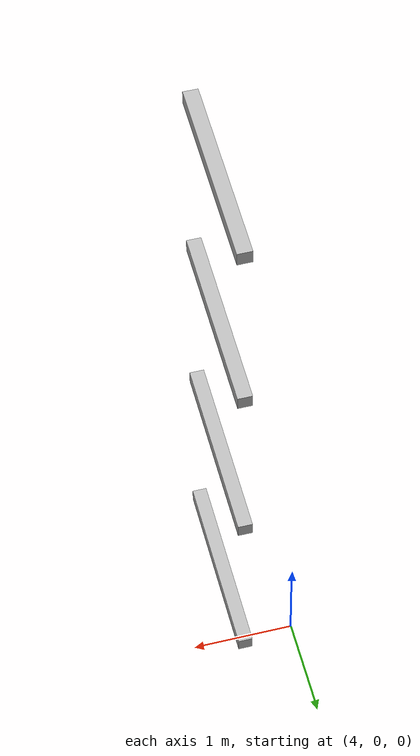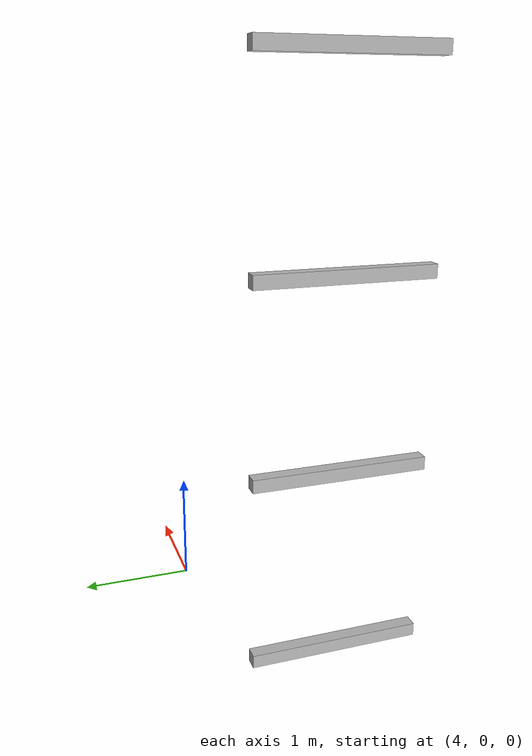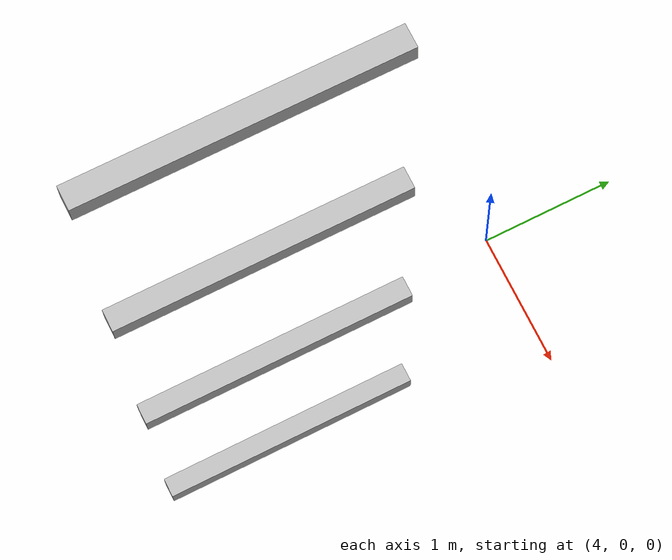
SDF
<sdf version="1.7">
 <world name="default">
  <model name="orthogonal_747_2.000.15_TS">
   <static>1</static>
   <link name="y_link_0_1_5">
    <inertial>
     <mass>1</mass>
     <inertia>
      <ixx>0.166667</ixx>
      <ixy>0</ixy>
      <ixz>0</ixz>
      <iyy>0.166667</iyy>
      <iyz>0</iyz>
      <izz>0.166667</izz>
     </inertia>
    </inertial>
    <pose>10.75 3.225 1.075 0 -0 0</pose>
    <visual name="visual_0">
     <laser_retro>274</laser_retro>
     <geometry><box><size>0.15 1e-06 0.15</size></box></geometry>
     <material>
      <script><name>Gazebo/Grey</name><uri>file://media/materials/scripts/gazebo.material</uri></script>
      <shader type="pixel"><normal_map>__default__</normal_map></shader>
      <ambient>0.678 0.498 0.659 1</ambient>
      <diffuse>0.7 0.7 0.7 1</diffuse>
      <specular>0.01 0.01 0.01 1</specular>
      <emissive>0 0 0 1</emissive>
     </material>
     <pose>0 -1 0 0 -0 0</pose>
     <transparency>1</transparency>
    </visual>
    <visual name="visual_1">
     <laser_retro>275</laser_retro>
     <geometry><box><size>0.15 1e-06 0.15</size></box></geometry>
     <material>
      <script><name>Gazebo/Grey</name><uri>file://media/materials/scripts/gazebo.material</uri></script>
      <shader type="pixel"><normal_map>__default__</normal_map></shader>
      <ambient>0.447 0.624 0.812 1</ambient>
      <diffuse>0.7 0.7 0.7 1</diffuse>
      <specular>0.01 0.01 0.01 1</specular>
      <emissive>0 0 0 1</emissive>
     </material>
     <pose>0 1 0 0 -0 0</pose>
     <transparency>1</transparency>
    </visual>
    <visual name="visual_2">
     <laser_retro>276</laser_retro>
     <geometry><box><size>0.15 2 1e-06</size></box></geometry>
     <material>
      <script><name>Gazebo/Grey</name><uri>file://media/materials/scripts/gazebo.material</uri></script>
      <shader type="pixel"><normal_map>__default__</normal_map></shader>
      <ambient>0.988 0.686 0.243 1</ambient>
      <diffuse>0.7 0.7 0.7 1</diffuse>
      <specular>0.01 0.01 0.01 1</specular>
      <emissive>0 0 0 1</emissive>
     </material>
     <pose>0 0 -0.075 0 -0 0</pose>
     <transparency>1</transparency>
    </visual>
    <visual name="visual_3">
     <laser_retro>277</laser_retro>
     <geometry><box><size>1e-06 2 0.15</size></box></geometry>
     <material>
      <script><name>Gazebo/Grey</name><uri>file://media/materials/scripts/gazebo.material</uri></script>
      <shader type="pixel"><normal_map>__default__</normal_map></shader>
      <ambient>0.988 0.914 0.31 1</ambient>
      <diffuse>0.7 0.7 0.7 1</diffuse>
      <specular>0.01 0.01 0.01 1</specular>
      <emissive>0 0 0 1</emissive>
     </material>
     <pose>0.075 0 0 0 -0 0</pose>
     <transparency>1</transparency>
    </visual>
    <visual name="visual_4">
     <laser_retro>278</laser_retro>
     <geometry><box><size>0.15 2 1e-06</size></box></geometry>
     <material>
      <script><name>Gazebo/Grey</name><uri>file://media/materials/scripts/gazebo.material</uri></script>
      <shader type="pixel"><normal_map>__default__</normal_map></shader>
      <ambient>0.937 0.161 0.161 1</ambient>
      <diffuse>0.7 0.7 0.7 1</diffuse>
      <specular>0.01 0.01 0.01 1</specular>
      <emissive>0 0 0 1</emissive>
     </material>
     <pose>0 0 0.075 0 -0 0</pose>
     <transparency>1</transparency>
    </visual>
    <visual name="visual_5">
     <laser_retro>279</laser_retro>
     <geometry><box><size>1e-06 2 0.15</size></box></geometry>
     <material>
      <script><name>Gazebo/Grey</name><uri>file://media/materials/scripts/gazebo.material</uri></script>
      <shader type="pixel"><normal_map>__default__</normal_map></shader>
      <ambient>0.541 0.886 0.204 1</ambient>
      <diffuse>0.7 0.7 0.7 1</diffuse>
      <specular>0.01 0.01 0.01 1</specular>
      <emissive>0 0 0 1</emissive>
     </material>
     <pose>-0.075 0 0 0 -0 0</pose>
     <transparency>1</transparency>
    </visual>
    <visual name="visual_texture">
     <geometry><box><size>0.149985 1.9998 0.149985</size></box></geometry>
     <material>
      <script>
       <uri>model://BASE_MODELS/simple_block_v2_textured/materials/scripts</uri>
       <uri>model://BASE_MODELS/simple_block_v2_textured/materials/textures</uri>
       <name>metal</name>
      </script>
     </material>
     <laser_retro>280</laser_retro>
    </visual>
    <collision name="collision">
     <geometry><box><size>0.15 2 0.15</size></box></geometry>
     <surface>
      <friction>
       <ode><mu>1</mu><mu2>1</mu2><fdir1>0 0 0</fdir1><slip1>0</slip1><slip2>0</slip2></ode>
       <torsional>
        <coefficient>1</coefficient>
        <patch_radius>0</patch_radius>
        <surface_radius>0</surface_radius>
        <use_patch_radius>1</use_patch_radius>
        <ode><slip>0</slip></ode>
       </torsional>
      </friction>
      <bounce><restitution_coefficient>0</restitution_coefficient><threshold>1e+06</threshold></bounce>
      <contact>
       <collide_without_contact>0</collide_without_contact>
       <collide_without_contact_bitmask>1</collide_without_contact_bitmask>
       <collide_bitmask>1</collide_bitmask>
       <ode>
        <soft_cfm>0</soft_cfm>
        <soft_erp>0.2</soft_erp>
        <kp>1e+13</kp>
        <kd>1</kd>
        <max_vel>0.01</max_vel>
        <min_depth>0</min_depth>
       </ode>
       <bullet>
        <split_impulse>1</split_impulse>
        <split_impulse_penetration_threshold>-0.01</split_impulse_penetration_threshold>
        <soft_cfm>0</soft_cfm>
        <soft_erp>0.2</soft_erp>
        <kp>1e+13</kp>
        <kd>1</kd>
       </bullet>
      </contact>
     </surface>
    </collision>
   </link>
   <link name="y_link_1_1_5">
    <inertial>
     <mass>1</mass>
     <inertia>
      <ixx>0.166667</ixx>
      <ixy>0</ixy>
      <ixz>0</ixz>
      <iyy>0.166667</iyy>
      <iyz>0</iyz>
      <izz>0.166667</izz>
     </inertia>
    </inertial>
    <pose>10.75 3.225 3.225 0 -0 0</pose>
    <visual name="visual_0">
     <laser_retro>1086</laser_retro>
     <geometry><box><size>0.15 1e-06 0.15</size></box></geometry>
     <material>
      <script><name>Gazebo/Grey</name><uri>file://media/materials/scripts/gazebo.material</uri></script>
      <shader type="pixel"><normal_map>__default__</normal_map></shader>
      <ambient>0.678 0.498 0.659 1</ambient>
      <diffuse>0.7 0.7 0.7 1</diffuse>
      <specular>0.01 0.01 0.01 1</specular>
      <emissive>0 0 0 1</emissive>
     </material>
     <pose>0 -1 0 0 -0 0</pose>
     <transparency>1</transparency>
    </visual>
    <visual name="visual_1">
     <laser_retro>1087</laser_retro>
     <geometry><box><size>0.15 1e-06 0.15</size></box></geometry>
     <material>
      <script><name>Gazebo/Grey</name><uri>file://media/materials/scripts/gazebo.material</uri></script>
      <shader type="pixel"><normal_map>__default__</normal_map></shader>
      <ambient>0.447 0.624 0.812 1</ambient>
      <diffuse>0.7 0.7 0.7 1</diffuse>
      <specular>0.01 0.01 0.01 1</specular>
      <emissive>0 0 0 1</emissive>
     </material>
     <pose>0 1 0 0 -0 0</pose>
     <transparency>1</transparency>
    </visual>
    <visual name="visual_2">
     <laser_retro>1088</laser_retro>
     <geometry><box><size>0.15 2 1e-06</size></box></geometry>
     <material>
      <script><name>Gazebo/Grey</name><uri>file://media/materials/scripts/gazebo.material</uri></script>
      <shader type="pixel"><normal_map>__default__</normal_map></shader>
      <ambient>0.988 0.686 0.243 1</ambient>
      <diffuse>0.7 0.7 0.7 1</diffuse>
      <specular>0.01 0.01 0.01 1</specular>
      <emissive>0 0 0 1</emissive>
     </material>
     <pose>0 0 -0.075 0 -0 0</pose>
     <transparency>1</transparency>
    </visual>
    <visual name="visual_3">
     <laser_retro>1089</laser_retro>
     <geometry><box><size>1e-06 2 0.15</size></box></geometry>
     <material>
      <script><name>Gazebo/Grey</name><uri>file://media/materials/scripts/gazebo.material</uri></script>
      <shader type="pixel"><normal_map>__default__</normal_map></shader>
      <ambient>0.988 0.914 0.31 1</ambient>
      <diffuse>0.7 0.7 0.7 1</diffuse>
      <specular>0.01 0.01 0.01 1</specular>
      <emissive>0 0 0 1</emissive>
     </material>
     <pose>0.075 0 0 0 -0 0</pose>
     <transparency>1</transparency>
    </visual>
    <visual name="visual_4">
     <laser_retro>1090</laser_retro>
     <geometry><box><size>0.15 2 1e-06</size></box></geometry>
     <material>
      <script><name>Gazebo/Grey</name><uri>file://media/materials/scripts/gazebo.material</uri></script>
      <shader type="pixel"><normal_map>__default__</normal_map></shader>
      <ambient>0.937 0.161 0.161 1</ambient>
      <diffuse>0.7 0.7 0.7 1</diffuse>
      <specular>0.01 0.01 0.01 1</specular>
      <emissive>0 0 0 1</emissive>
     </material>
     <pose>0 0 0.075 0 -0 0</pose>
     <transparency>1</transparency>
    </visual>
    <visual name="visual_5">
     <laser_retro>1091</laser_retro>
     <geometry><box><size>1e-06 2 0.15</size></box></geometry>
     <material>
      <script><name>Gazebo/Grey</name><uri>file://media/materials/scripts/gazebo.material</uri></script>
      <shader type="pixel"><normal_map>__default__</normal_map></shader>
      <ambient>0.541 0.886 0.204 1</ambient>
      <diffuse>0.7 0.7 0.7 1</diffuse>
      <specular>0.01 0.01 0.01 1</specular>
      <emissive>0 0 0 1</emissive>
     </material>
     <pose>-0.075 0 0 0 -0 0</pose>
     <transparency>1</transparency>
    </visual>
    <visual name="visual_texture">
     <geometry><box><size>0.149985 1.9998 0.149985</size></box></geometry>
     <material>
      <script>
       <uri>model://BASE_MODELS/simple_block_v2_textured/materials/scripts</uri>
       <uri>model://BASE_MODELS/simple_block_v2_textured/materials/textures</uri>
       <name>metal</name>
      </script>
     </material>
     <laser_retro>1092</laser_retro>
    </visual>
    <collision name="collision">
     <geometry><box><size>0.15 2 0.15</size></box></geometry>
     <surface>
      <friction>
       <ode><mu>1</mu><mu2>1</mu2><fdir1>0 0 0</fdir1><slip1>0</slip1><slip2>0</slip2></ode>
       <torsional>
        <coefficient>1</coefficient>
        <patch_radius>0</patch_radius>
        <surface_radius>0</surface_radius>
        <use_patch_radius>1</use_patch_radius>
        <ode><slip>0</slip></ode>
       </torsional>
      </friction>
      <bounce><restitution_coefficient>0</restitution_coefficient><threshold>1e+06</threshold></bounce>
      <contact>
       <collide_without_contact>0</collide_without_contact>
       <collide_without_contact_bitmask>1</collide_without_contact_bitmask>
       <collide_bitmask>1</collide_bitmask>
       <ode>
        <soft_cfm>0</soft_cfm>
        <soft_erp>0.2</soft_erp>
        <kp>1e+13</kp>
        <kd>1</kd>
        <max_vel>0.01</max_vel>
        <min_depth>0</min_depth>
       </ode>
       <bullet>
        <split_impulse>1</split_impulse>
        <split_impulse_penetration_threshold>-0.01</split_impulse_penetration_threshold>
        <soft_cfm>0</soft_cfm>
        <soft_erp>0.2</soft_erp>
        <kp>1e+13</kp>
        <kd>1</kd>
       </bullet>
      </contact>
     </surface>
    </collision>
   </link>
   <link name="y_link_2_1_5">
    <inertial>
     <mass>1</mass>
     <inertia>
      <ixx>0.166667</ixx>
      <ixy>0</ixy>
      <ixz>0</ixz>
      <iyy>0.166667</iyy>
      <iyz>0</iyz>
      <izz>0.166667</izz>
     </inertia>
    </inertial>
    <pose>10.75 3.225 5.375 0 -0 0</pose>
    <visual name="visual_0">
     <laser_retro>1989</laser_retro>
     <geometry><box><size>0.15 1e-06 0.15</size></box></geometry>
     <material>
      <script><name>Gazebo/Grey</name><uri>file://media/materials/scripts/gazebo.material</uri></script>
      <shader type="pixel"><normal_map>__default__</normal_map></shader>
      <ambient>0.678 0.498 0.659 1</ambient>
      <diffuse>0.7 0.7 0.7 1</diffuse>
      <specular>0.01 0.01 0.01 1</specular>
      <emissive>0 0 0 1</emissive>
     </material>
     <pose>0 -1 0 0 -0 0</pose>
     <transparency>1</transparency>
    </visual>
    <visual name="visual_1">
     <laser_retro>1990</laser_retro>
     <geometry><box><size>0.15 1e-06 0.15</size></box></geometry>
     <material>
      <script><name>Gazebo/Grey</name><uri>file://media/materials/scripts/gazebo.material</uri></script>
      <shader type="pixel"><normal_map>__default__</normal_map></shader>
      <ambient>0.447 0.624 0.812 1</ambient>
      <diffuse>0.7 0.7 0.7 1</diffuse>
      <specular>0.01 0.01 0.01 1</specular>
      <emissive>0 0 0 1</emissive>
     </material>
     <pose>0 1 0 0 -0 0</pose>
     <transparency>1</transparency>
    </visual>
    <visual name="visual_2">
     <laser_retro>1991</laser_retro>
     <geometry><box><size>0.15 2 1e-06</size></box></geometry>
     <material>
      <script><name>Gazebo/Grey</name><uri>file://media/materials/scripts/gazebo.material</uri></script>
      <shader type="pixel"><normal_map>__default__</normal_map></shader>
      <ambient>0.988 0.686 0.243 1</ambient>
      <diffuse>0.7 0.7 0.7 1</diffuse>
      <specular>0.01 0.01 0.01 1</specular>
      <emissive>0 0 0 1</emissive>
     </material>
     <pose>0 0 -0.075 0 -0 0</pose>
     <transparency>1</transparency>
    </visual>
    <visual name="visual_3">
     <laser_retro>1992</laser_retro>
     <geometry><box><size>1e-06 2 0.15</size></box></geometry>
     <material>
      <script><name>Gazebo/Grey</name><uri>file://media/materials/scripts/gazebo.material</uri></script>
      <shader type="pixel"><normal_map>__default__</normal_map></shader>
      <ambient>0.988 0.914 0.31 1</ambient>
      <diffuse>0.7 0.7 0.7 1</diffuse>
      <specular>0.01 0.01 0.01 1</specular>
      <emissive>0 0 0 1</emissive>
     </material>
     <pose>0.075 0 0 0 -0 0</pose>
     <transparency>1</transparency>
    </visual>
    <visual name="visual_4">
     <laser_retro>1993</laser_retro>
     <geometry><box><size>0.15 2 1e-06</size></box></geometry>
     <material>
      <script><name>Gazebo/Grey</name><uri>file://media/materials/scripts/gazebo.material</uri></script>
      <shader type="pixel"><normal_map>__default__</normal_map></shader>
      <ambient>0.937 0.161 0.161 1</ambient>
      <diffuse>0.7 0.7 0.7 1</diffuse>
      <specular>0.01 0.01 0.01 1</specular>
      <emissive>0 0 0 1</emissive>
     </material>
     <pose>0 0 0.075 0 -0 0</pose>
     <transparency>1</transparency>
    </visual>
    <visual name="visual_5">
     <laser_retro>1994</laser_retro>
     <geometry><box><size>1e-06 2 0.15</size></box></geometry>
     <material>
      <script><name>Gazebo/Grey</name><uri>file://media/materials/scripts/gazebo.material</uri></script>
      <shader type="pixel"><normal_map>__default__</normal_map></shader>
      <ambient>0.541 0.886 0.204 1</ambient>
      <diffuse>0.7 0.7 0.7 1</diffuse>
      <specular>0.01 0.01 0.01 1</specular>
      <emissive>0 0 0 1</emissive>
     </material>
     <pose>-0.075 0 0 0 -0 0</pose>
     <transparency>1</transparency>
    </visual>
    <visual name="visual_texture">
     <geometry><box><size>0.149985 1.9998 0.149985</size></box></geometry>
     <material>
      <script>
       <uri>model://BASE_MODELS/simple_block_v2_textured/materials/scripts</uri>
       <uri>model://BASE_MODELS/simple_block_v2_textured/materials/textures</uri>
       <name>metal</name>
      </script>
     </material>
     <laser_retro>1995</laser_retro>
    </visual>
    <collision name="collision">
     <geometry><box><size>0.15 2 0.15</size></box></geometry>
     <surface>
      <friction>
       <ode><mu>1</mu><mu2>1</mu2><fdir1>0 0 0</fdir1><slip1>0</slip1><slip2>0</slip2></ode>
       <torsional>
        <coefficient>1</coefficient>
        <patch_radius>0</patch_radius>
        <surface_radius>0</surface_radius>
        <use_patch_radius>1</use_patch_radius>
        <ode><slip>0</slip></ode>
       </torsional>
      </friction>
      <bounce><restitution_coefficient>0</restitution_coefficient><threshold>1e+06</threshold></bounce>
      <contact>
       <collide_without_contact>0</collide_without_contact>
       <collide_without_contact_bitmask>1</collide_without_contact_bitmask>
       <collide_bitmask>1</collide_bitmask>
       <ode>
        <soft_cfm>0</soft_cfm>
        <soft_erp>0.2</soft_erp>
        <kp>1e+13</kp>
        <kd>1</kd>
        <max_vel>0.01</max_vel>
        <min_depth>0</min_depth>
       </ode>
       <bullet>
        <split_impulse>1</split_impulse>
        <split_impulse_penetration_threshold>-0.01</split_impulse_penetration_threshold>
        <soft_cfm>0</soft_cfm>
        <soft_erp>0.2</soft_erp>
        <kp>1e+13</kp>
        <kd>1</kd>
       </bullet>
      </contact>
     </surface>
    </collision>
   </link>
   <link name="y_link_3_1_5">
    <inertial>
     <mass>1</mass>
     <inertia>
      <ixx>0.166667</ixx>
      <ixy>0</ixy>
      <ixz>0</ixz>
      <iyy>0.166667</iyy>
      <iyz>0</iyz>
      <izz>0.166667</izz>
     </inertia>
    </inertial>
    <pose>10.75 3.225 7.525 0 -0 0</pose>
    <visual name="visual_0">
     <laser_retro>2892</laser_retro>
     <geometry><box><size>0.15 1e-06 0.15</size></box></geometry>
     <material>
      <script><name>Gazebo/Grey</name><uri>file://media/materials/scripts/gazebo.material</uri></script>
      <shader type="pixel"><normal_map>__default__</normal_map></shader>
      <ambient>0.678 0.498 0.659 1</ambient>
      <diffuse>0.7 0.7 0.7 1</diffuse>
      <specular>0.01 0.01 0.01 1</specular>
      <emissive>0 0 0 1</emissive>
     </material>
     <pose>0 -1 0 0 -0 0</pose>
     <transparency>1</transparency>
    </visual>
    <visual name="visual_1">
     <laser_retro>2893</laser_retro>
     <geometry><box><size>0.15 1e-06 0.15</size></box></geometry>
     <material>
      <script><name>Gazebo/Grey</name><uri>file://media/materials/scripts/gazebo.material</uri></script>
      <shader type="pixel"><normal_map>__default__</normal_map></shader>
      <ambient>0.447 0.624 0.812 1</ambient>
      <diffuse>0.7 0.7 0.7 1</diffuse>
      <specular>0.01 0.01 0.01 1</specular>
      <emissive>0 0 0 1</emissive>
     </material>
     <pose>0 1 0 0 -0 0</pose>
     <transparency>1</transparency>
    </visual>
    <visual name="visual_2">
     <laser_retro>2894</laser_retro>
     <geometry><box><size>0.15 2 1e-06</size></box></geometry>
     <material>
      <script><name>Gazebo/Grey</name><uri>file://media/materials/scripts/gazebo.material</uri></script>
      <shader type="pixel"><normal_map>__default__</normal_map></shader>
      <ambient>0.988 0.686 0.243 1</ambient>
      <diffuse>0.7 0.7 0.7 1</diffuse>
      <specular>0.01 0.01 0.01 1</specular>
      <emissive>0 0 0 1</emissive>
     </material>
     <pose>0 0 -0.075 0 -0 0</pose>
     <transparency>1</transparency>
    </visual>
    <visual name="visual_3">
     <laser_retro>2895</laser_retro>
     <geometry><box><size>1e-06 2 0.15</size></box></geometry>
     <material>
      <script><name>Gazebo/Grey</name><uri>file://media/materials/scripts/gazebo.material</uri></script>
      <shader type="pixel"><normal_map>__default__</normal_map></shader>
      <ambient>0.988 0.914 0.31 1</ambient>
      <diffuse>0.7 0.7 0.7 1</diffuse>
      <specular>0.01 0.01 0.01 1</specular>
      <emissive>0 0 0 1</emissive>
     </material>
     <pose>0.075 0 0 0 -0 0</pose>
     <transparency>1</transparency>
    </visual>
    <visual name="visual_4">
     <laser_retro>2896</laser_retro>
     <geometry><box><size>0.15 2 1e-06</size></box></geometry>
     <material>
      <script><name>Gazebo/Grey</name><uri>file://media/materials/scripts/gazebo.material</uri></script>
      <shader type="pixel"><normal_map>__default__</normal_map></shader>
      <ambient>0.937 0.161 0.161 1</ambient>
      <diffuse>0.7 0.7 0.7 1</diffuse>
      <specular>0.01 0.01 0.01 1</specular>
      <emissive>0 0 0 1</emissive>
     </material>
     <pose>0 0 0.075 0 -0 0</pose>
     <transparency>1</transparency>
    </visual>
    <visual name="visual_5">
     <laser_retro>2897</laser_retro>
     <geometry><box><size>1e-06 2 0.15</size></box></geometry>
     <material>
      <script><name>Gazebo/Grey</name><uri>file://media/materials/scripts/gazebo.material</uri></script>
      <shader type="pixel"><normal_map>__default__</normal_map></shader>
      <ambient>0.541 0.886 0.204 1</ambient>
      <diffuse>0.7 0.7 0.7 1</diffuse>
      <specular>0.01 0.01 0.01 1</specular>
      <emissive>0 0 0 1</emissive>
     </material>
     <pose>-0.075 0 0 0 -0 0</pose>
     <transparency>1</transparency>
    </visual>
    <visual name="visual_texture">
     <geometry><box><size>0.149985 1.9998 0.149985</size></box></geometry>
     <material>
      <script>
       <uri>model://BASE_MODELS/simple_block_v2_textured/materials/scripts</uri>
       <uri>model://BASE_MODELS/simple_block_v2_textured/materials/textures</uri>
       <name>metal</name>
      </script>
     </material>
     <laser_retro>2898</laser_retro>
    </visual>
    <collision name="collision">
     <geometry><box><size>0.15 2 0.15</size></box></geometry>
     <surface>
      <friction>
       <ode><mu>1</mu><mu2>1</mu2><fdir1>0 0 0</fdir1><slip1>0</slip1><slip2>0</slip2></ode>
       <torsional>
        <coefficient>1</coefficient>
        <patch_radius>0</patch_radius>
        <surface_radius>0</surface_radius>
        <use_patch_radius>1</use_patch_radius>
        <ode><slip>0</slip></ode>
       </torsional>
      </friction>
      <bounce><restitution_coefficient>0</restitution_coefficient><threshold>1e+06</threshold></bounce>
      <contact>
       <collide_without_contact>0</collide_without_contact>
       <collide_without_contact_bitmask>1</collide_without_contact_bitmask>
       <collide_bitmask>1</collide_bitmask>
       <ode>
        <soft_cfm>0</soft_cfm>
        <soft_erp>0.2</soft_erp>
        <kp>1e+13</kp>
        <kd>1</kd>
        <max_vel>0.01</max_vel>
        <min_depth>0</min_depth>
       </ode>
       <bullet>
        <split_impulse>1</split_impulse>
        <split_impulse_penetration_threshold>-0.01</split_impulse_penetration_threshold>
        <soft_cfm>0</soft_cfm>
        <soft_erp>0.2</soft_erp>
        <kp>1e+13</kp>
        <kd>1</kd>
       </bullet>
      </contact>
     </surface>
    </collision>
   </link>
   <pose>-6.47624 -5 -2.5 0 -0 0</pose>
  </model>
 </world>
</sdf>
